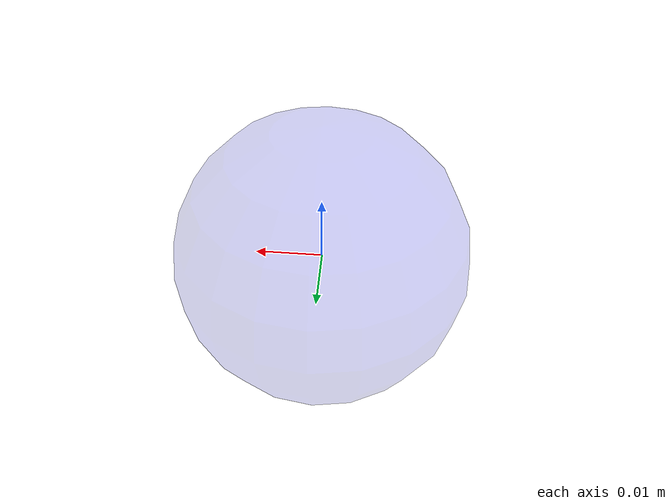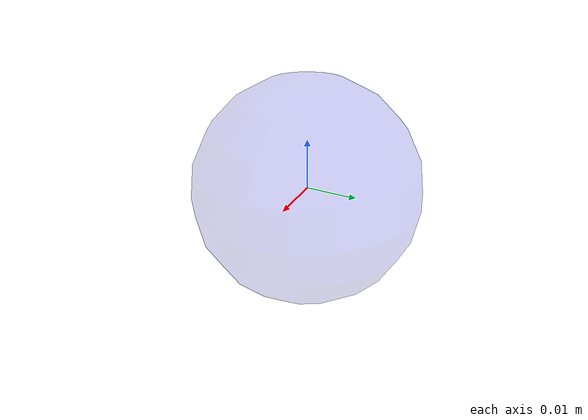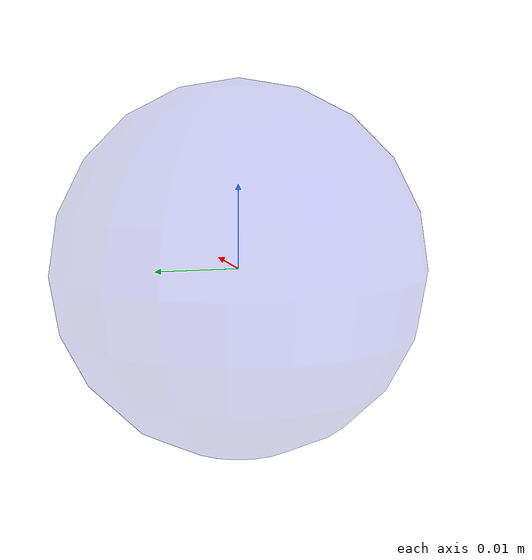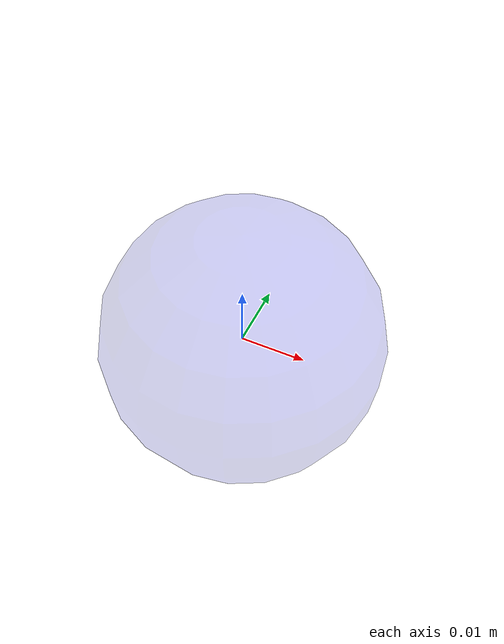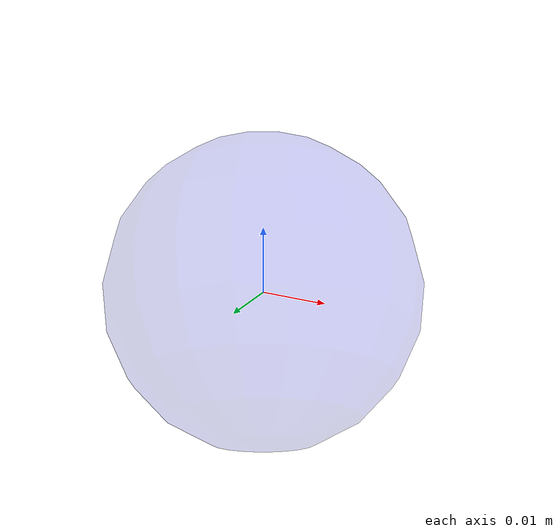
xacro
<?xml version="1.0"?>
<robot name="esferita" xmlns:xacro="http://ros.org/wiki/xacro">
  <xacro:property name="pi" value="3.1415" />
  <xacro:property name="polelen" value="1.2" />
  <xacro:property name="width" value="0.02" />
  <xacro:property name="bodylen" value="0.06" />
  <xacro:property name="radio" value="0.022" />

<!-- DEFINICIONES INICIALES -->
  <material name="blue">
    <color rgba="0 0 0.8 0.1"/>
  </material>

  <xacro:macro name="default_inertial" params="mass">
    <inertial>
      <mass value="${mass}" />
      <inertia ixx="1.0" ixy="0.0" ixz="0.0" iyy="1.0" iyz="0.0" izz="1.0" />
    </inertial>
  </xacro:macro>

<!-- CONSTRUCCION DE ESFERAS PARA CONTROLAR LA TERCERA EN TODAS LAS POSICIONES -->

  <link name="world">
  </link>

  <joint name="esferaX_extension2" type="prismatic">
    <parent link="world"/>
    <child link="esferaX_link"/>
    <axis xyz="1 0 0" />
    <limit effort="1000.0" lower="-100" upper="100" velocity="0.5"/>
    <origin rpy="0 0 0" xyz="0 0 0"/>
    <dynamics damping="1.0" friction="0.0"/>
  </joint>

  <joint name="esferaY_extension2" type="prismatic">
    <parent link="esferaX_link"/>
    <child link="esferaY_link"/>
    <axis xyz="0 1 0" />
    <limit effort="1000.0" lower="-100" upper="100" velocity="0.5"/>
    <origin rpy="0 0 0" xyz="0 0 0"/>
    <dynamics damping="1.0" friction="0.0"/>
  </joint>

  <joint name="esferaZ_extension2" type="prismatic">
    <parent link="esferaY_link"/>
    <child link="esferaZ_link"/>
    <axis xyz="0 0 1" />
    <limit effort="1000.0" lower="-100" upper="100" velocity="0.5"/>
    <origin rpy="0 0 0" xyz="0 0 0"/>
    <dynamics damping="1.0" friction="0.0"/>
  </joint>

<!-- AQUI SE DEFINE LAS CARACTERISTICAS FISICAS DE LA ESFERITA-->
  <link name="esferaX_link">
    <gravity>0</gravity>
    <visual>
      <geometry>
        <sphere radius="0.001"/>
      </geometry>
      <material name="blue"/>
      <origin xyz="0 0 0" rpy="0 0 0 "/>
    </visual>
    <xacro:default_inertial mass="0.01"/>
  </link>

  <link name="esferaY_link">
    <gravity>0</gravity>
    <visual>
      <geometry>
        <sphere radius="0.001"/>
      </geometry>
      <material name="blue"/>
      <origin xyz="0 0 0" rpy="0 0 0 "/>
    </visual>
    <xacro:default_inertial mass="0.01"/>
  </link>

  <link name="esferaZ_link">
    <gravity>0</gravity>
    <visual>
      <geometry>
        <sphere radius="${radio}"/>
      </geometry>
      <material name="blue"/>
      <origin xyz="0 0 0" rpy="0 0 0 "/>
    </visual>
    <xacro:default_inertial mass="0.01"/>
  </link>

  <transmission name="gripper_extension_transX" type="SimpleTransmission">
    <type>transmission_interface/SimpleTransmission</type>
    <actuator name="gripper_extension_motorX">
      <mechanicalReduction>1</mechanicalReduction>
    </actuator>
    <joint name="esferaX_extension2">
      <hardwareInterface>EffortJointInterface</hardwareInterface>
    </joint>
  </transmission>

  <transmission name="gripper_extension_transY" type="SimpleTransmission">
    <type>transmission_interface/SimpleTransmission</type>
    <actuator name="gripper_extension_motorY">
      <mechanicalReduction>1</mechanicalReduction>
    </actuator>
    <joint name="esferaY_extension2">
      <hardwareInterface>EffortJointInterface</hardwareInterface>
    </joint>
  </transmission>

  <transmission name="gripper_extension_transZ" type="SimpleTransmission">
    <type>transmission_interface/SimpleTransmission</type>
    <actuator name="gripper_extension_motorZ">
      <mechanicalReduction>1</mechanicalReduction>
    </actuator>
    <joint name="esferaZ_extension2">
      <hardwareInterface>EffortJointInterface</hardwareInterface>
    </joint>
  </transmission>

  <!-- Gazebo plugin for ROS Control -->
  <gazebo>
    <plugin name="gazebo_ros_control" filename="libgazebo_ros_control.so">
    </plugin>
  </gazebo>

  <gazebo reference="esferaZ_link">
    <mu1>0.2</mu1>
    <mu2>0.2</mu2>
    <material>Gazebo/BlueTransparent</material>
  </gazebo>

</robot>
